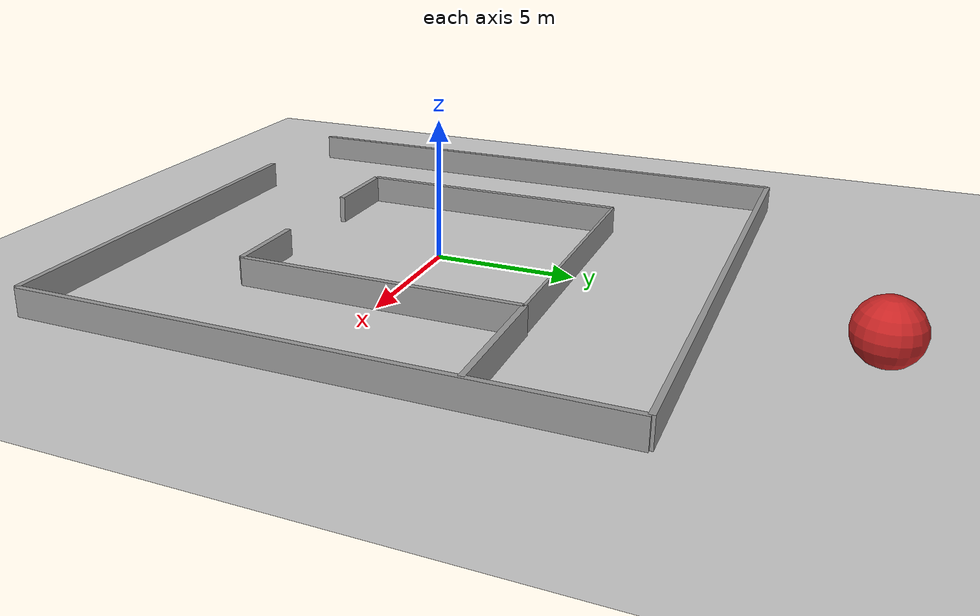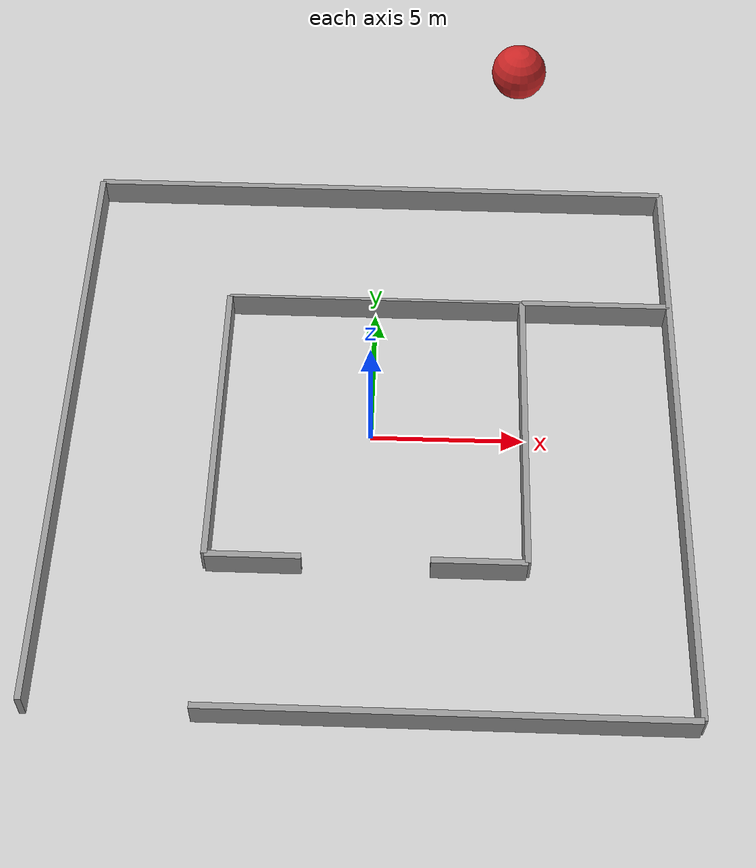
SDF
<?xml version="1.0" ?>
<!-- |    This document was autogenerated by xacro from /home/florian/workspace/catkin_ws/src/mapnplan/worlds/maze2.sdf.xacro | -->
<!-- |    EDITING THIS FILE BY HAND IS NOT RECOMMENDED                                 | -->
<sdf version="1.4">
  <world name="maze" xmlns:xacro="http://www.ros.org/wiki/xacro">
    <light name="sun" type="directional">
      <cast_shadows>1</cast_shadows>
      <pose>0 0 10 0 -0 0</pose>
      <diffuse>0.8 0.8 0.8 1</diffuse>
      <specular>0.2 0.2 0.2 1</specular>
      <attenuation>
        <range>1000</range>
        <constant>0.9</constant>
        <linear>0.01</linear>
        <quadratic>0.001</quadratic>
      </attenuation>
      <direction>-0.5 0.1 -0.9</direction>
    </light>
    <model name="ground_plane">
      <static>1</static>
      <link name="link">
        <collision name="collision">
          <geometry>
            <plane>
              <normal>0 0 1</normal>
              <size>100 100</size>
            </plane>
          </geometry>
          <surface>
            <friction>
              <ode>
                <mu>100</mu>
                <mu2>50</mu2>
              </ode>
            </friction>
            <bounce/>
            <contact>
              <ode/>
            </contact>
          </surface>
          <max_contacts>10</max_contacts>
        </collision>
        <visual name="visual">
          <cast_shadows>0</cast_shadows>
          <geometry>
            <plane>
              <normal>0 0 1</normal>
              <size>100 100</size>
            </plane>
          </geometry>
          <material>
            <script>
              <uri>file://media/materials/scripts/gazebo.material</uri>
              <name>Gazebo/Grey</name>
            </script>
          </material>
        </visual>
        <velocity_decay>
          <linear>0</linear>
          <angular>0</angular>
        </velocity_decay>
        <self_collide>0</self_collide>
        <kinematic>0</kinematic>
        <gravity>1</gravity>
      </link>
    </model>
    <physics type="ode">
      <max_step_size>0.001</max_step_size>
      <real_time_factor>1</real_time_factor>
      <real_time_update_rate>1000</real_time_update_rate>
      <gravity>0 0 -9.8</gravity>
    </physics>
    <scene>
      <ambient>0.4 0.4 0.4 1</ambient>
      <background>0.7 0.7 0.7 1</background>
      <shadows>1</shadows>
    </scene>
    <model name="unit_box_1">
      <pose>0 5 0.5 0 0 0</pose>
      <link name="link">
        <inertial>
          <mass>1</mass>
          <inertia>
            <ixx>1</ixx>
            <ixy>0</ixy>
            <ixz>0</ixz>
            <iyy>1</iyy>
            <iyz>0</iyz>
            <izz>1</izz>
          </inertia>
        </inertial>
        <collision name="collision">
          <geometry>
            <box>
              <size>10 0.1 1</size>
            </box>
          </geometry>
          <max_contacts>10</max_contacts>
          <surface>
            <bounce/>
            <friction>
              <ode/>
            </friction>
            <contact>
              <ode/>
            </contact>
          </surface>
        </collision>
        <visual name="visual">
          <geometry>
            <box>
              <size>10 0.1 1</size>
            </box>
          </geometry>
          <material>
            <script>
              <uri>file://media/materials/scripts/gazebo.material</uri>
              <name>Gazebo/Grey</name>
            </script>
          </material>
        </visual>
        <velocity_decay>
          <linear>0</linear>
          <angular>0</angular>
        </velocity_decay>
        <self_collide>0</self_collide>
        <kinematic>0</kinematic>
        <gravity>1</gravity>
      </link>
      <static>1</static>
    </model>
    <model name="unit_box_2">
      <pose>-5 0 0.5 0 0 0</pose>
      <link name="link">
        <inertial>
          <mass>1</mass>
          <inertia>
            <ixx>1</ixx>
            <ixy>0</ixy>
            <ixz>0</ixz>
            <iyy>1</iyy>
            <iyz>0</iyz>
            <izz>1</izz>
          </inertia>
        </inertial>
        <collision name="collision">
          <geometry>
            <box>
              <size>0.2 10 1</size>
            </box>
          </geometry>
          <max_contacts>10</max_contacts>
          <surface>
            <bounce/>
            <friction>
              <ode/>
            </friction>
            <contact>
              <ode/>
            </contact>
          </surface>
        </collision>
        <visual name="visual">
          <geometry>
            <box>
              <size>0.2 10 1</size>
            </box>
          </geometry>
          <material>
            <script>
              <uri>file://media/materials/scripts/gazebo.material</uri>
              <name>Gazebo/Grey</name>
            </script>
          </material>
        </visual>
        <velocity_decay>
          <linear>0</linear>
          <angular>0</angular>
        </velocity_decay>
        <self_collide>0</self_collide>
        <kinematic>0</kinematic>
        <gravity>1</gravity>
      </link>
      <static>1</static>
    </model>
    <model name="unit_box_3">
      <pose>5 0 0.5 0 0 0</pose>
      <link name="link">
        <inertial>
          <mass>1</mass>
          <inertia>
            <ixx>1</ixx>
            <ixy>0</ixy>
            <ixz>0</ixz>
            <iyy>1</iyy>
            <iyz>0</iyz>
            <izz>1</izz>
          </inertia>
        </inertial>
        <collision name="collision">
          <geometry>
            <box>
              <size>0.2 10 1</size>
            </box>
          </geometry>
          <max_contacts>10</max_contacts>
          <surface>
            <bounce/>
            <friction>
              <ode/>
            </friction>
            <contact>
              <ode/>
            </contact>
          </surface>
        </collision>
        <visual name="visual">
          <geometry>
            <box>
              <size>0.2 10 1</size>
            </box>
          </geometry>
          <material>
            <script>
              <uri>file://media/materials/scripts/gazebo.material</uri>
              <name>Gazebo/Grey</name>
            </script>
          </material>
        </visual>
        <velocity_decay>
          <linear>0</linear>
          <angular>0</angular>
        </velocity_decay>
        <self_collide>0</self_collide>
        <kinematic>0</kinematic>
        <gravity>1</gravity>
      </link>
      <static>1</static>
    </model>
    <model name="unit_box_4">
      <pose>-3.5 -5 0.5 0 0 0</pose>
      <link name="link">
        <inertial>
          <mass>1</mass>
          <inertia>
            <ixx>1</ixx>
            <ixy>0</ixy>
            <ixz>0</ixz>
            <iyy>1</iyy>
            <iyz>0</iyz>
            <izz>1</izz>
          </inertia>
        </inertial>
        <collision name="collision">
          <geometry>
            <box>
              <size>3 0.2 1</size>
            </box>
          </geometry>
          <max_contacts>10</max_contacts>
          <surface>
            <bounce/>
            <friction>
              <ode/>
            </friction>
            <contact>
              <ode/>
            </contact>
          </surface>
        </collision>
        <visual name="visual">
          <geometry>
            <box>
              <size>3 0.2 1</size>
            </box>
          </geometry>
          <material>
            <script>
              <uri>file://media/materials/scripts/gazebo.material</uri>
              <name>Gazebo/Grey</name>
            </script>
          </material>
        </visual>
        <velocity_decay>
          <linear>0</linear>
          <angular>0</angular>
        </velocity_decay>
        <self_collide>0</self_collide>
        <kinematic>0</kinematic>
        <gravity>1</gravity>
      </link>
      <static>1</static>
    </model>
    <model name="unit_box_5">
      <pose>3.5 -5 0.5 0 0 0</pose>
      <link name="link">
        <inertial>
          <mass>1</mass>
          <inertia>
            <ixx>1</ixx>
            <ixy>0</ixy>
            <ixz>0</ixz>
            <iyy>1</iyy>
            <iyz>0</iyz>
            <izz>1</izz>
          </inertia>
        </inertial>
        <collision name="collision">
          <geometry>
            <box>
              <size>3 0.2 1</size>
            </box>
          </geometry>
          <max_contacts>10</max_contacts>
          <surface>
            <bounce/>
            <friction>
              <ode/>
            </friction>
            <contact>
              <ode/>
            </contact>
          </surface>
        </collision>
        <visual name="visual">
          <geometry>
            <box>
              <size>3 0.2 1</size>
            </box>
          </geometry>
          <material>
            <script>
              <uri>file://media/materials/scripts/gazebo.material</uri>
              <name>Gazebo/Grey</name>
            </script>
          </material>
        </visual>
        <velocity_decay>
          <linear>0</linear>
          <angular>0</angular>
        </velocity_decay>
        <self_collide>0</self_collide>
        <kinematic>0</kinematic>
        <gravity>1</gravity>
      </link>
      <static>1</static>
    </model>
    <model name="unit_box_6">
      <pose>7.5 5 0.5 0 0 0</pose>
      <link name="link">
        <inertial>
          <mass>1</mass>
          <inertia>
            <ixx>1</ixx>
            <ixy>0</ixy>
            <ixz>0</ixz>
            <iyy>1</iyy>
            <iyz>0</iyz>
            <izz>1</izz>
          </inertia>
        </inertial>
        <collision name="collision">
          <geometry>
            <box>
              <size>5 0.2 1</size>
            </box>
          </geometry>
          <max_contacts>10</max_contacts>
          <surface>
            <bounce/>
            <friction>
              <ode/>
            </friction>
            <contact>
              <ode/>
            </contact>
          </surface>
        </collision>
        <visual name="visual">
          <geometry>
            <box>
              <size>5 0.2 1</size>
            </box>
          </geometry>
          <material>
            <script>
              <uri>file://media/materials/scripts/gazebo.material</uri>
              <name>Gazebo/Grey</name>
            </script>
          </material>
        </visual>
        <velocity_decay>
          <linear>0</linear>
          <angular>0</angular>
        </velocity_decay>
        <self_collide>0</self_collide>
        <kinematic>0</kinematic>
        <gravity>1</gravity>
      </link>
      <static>1</static>
    </model>
    <model name="unit_box_7">
      <pose>10 0 0.5 0 0 0</pose>
      <link name="link">
        <inertial>
          <mass>1</mass>
          <inertia>
            <ixx>1</ixx>
            <ixy>0</ixy>
            <ixz>0</ixz>
            <iyy>1</iyy>
            <iyz>0</iyz>
            <izz>1</izz>
          </inertia>
        </inertial>
        <collision name="collision">
          <geometry>
            <box>
              <size>0.2 20 1</size>
            </box>
          </geometry>
          <max_contacts>10</max_contacts>
          <surface>
            <bounce/>
            <friction>
              <ode/>
            </friction>
            <contact>
              <ode/>
            </contact>
          </surface>
        </collision>
        <visual name="visual">
          <geometry>
            <box>
              <size>0.2 20 1</size>
            </box>
          </geometry>
          <material>
            <script>
              <uri>file://media/materials/scripts/gazebo.material</uri>
              <name>Gazebo/Grey</name>
            </script>
          </material>
        </visual>
        <velocity_decay>
          <linear>0</linear>
          <angular>0</angular>
        </velocity_decay>
        <self_collide>0</self_collide>
        <kinematic>0</kinematic>
        <gravity>1</gravity>
      </link>
      <static>1</static>
    </model>
    <model name="unit_box_8">
      <pose>2.5 -10 0.5 0 0 0</pose>
      <link name="link">
        <inertial>
          <mass>1</mass>
          <inertia>
            <ixx>1</ixx>
            <ixy>0</ixy>
            <ixz>0</ixz>
            <iyy>1</iyy>
            <iyz>0</iyz>
            <izz>1</izz>
          </inertia>
        </inertial>
        <collision name="collision">
          <geometry>
            <box>
              <size>15 0.2 1</size>
            </box>
          </geometry>
          <max_contacts>10</max_contacts>
          <surface>
            <bounce/>
            <friction>
              <ode/>
            </friction>
            <contact>
              <ode/>
            </contact>
          </surface>
        </collision>
        <visual name="visual">
          <geometry>
            <box>
              <size>15 0.2 1</size>
            </box>
          </geometry>
          <material>
            <script>
              <uri>file://media/materials/scripts/gazebo.material</uri>
              <name>Gazebo/Grey</name>
            </script>
          </material>
        </visual>
        <velocity_decay>
          <linear>0</linear>
          <angular>0</angular>
        </velocity_decay>
        <self_collide>0</self_collide>
        <kinematic>0</kinematic>
        <gravity>1</gravity>
      </link>
      <static>1</static>
    </model>
    <model name="unit_box_9">
      <pose>-10 0 0.5 0 0 0</pose>
      <link name="link">
        <inertial>
          <mass>1</mass>
          <inertia>
            <ixx>1</ixx>
            <ixy>0</ixy>
            <ixz>0</ixz>
            <iyy>1</iyy>
            <iyz>0</iyz>
            <izz>1</izz>
          </inertia>
        </inertial>
        <collision name="collision">
          <geometry>
            <box>
              <size>0.2 20 1</size>
            </box>
          </geometry>
          <max_contacts>10</max_contacts>
          <surface>
            <bounce/>
            <friction>
              <ode/>
            </friction>
            <contact>
              <ode/>
            </contact>
          </surface>
        </collision>
        <visual name="visual">
          <geometry>
            <box>
              <size>0.2 20 1</size>
            </box>
          </geometry>
          <material>
            <script>
              <uri>file://media/materials/scripts/gazebo.material</uri>
              <name>Gazebo/Grey</name>
            </script>
          </material>
        </visual>
        <velocity_decay>
          <linear>0</linear>
          <angular>0</angular>
        </velocity_decay>
        <self_collide>0</self_collide>
        <kinematic>0</kinematic>
        <gravity>1</gravity>
      </link>
      <static>1</static>
    </model>
    <model name="unit_box_10">
      <pose>0 10 0.5 0 0 0</pose>
      <link name="link">
        <inertial>
          <mass>1</mass>
          <inertia>
            <ixx>1</ixx>
            <ixy>0</ixy>
            <ixz>0</ixz>
            <iyy>1</iyy>
            <iyz>0</iyz>
            <izz>1</izz>
          </inertia>
        </inertial>
        <collision name="collision">
          <geometry>
            <box>
              <size>20 0.2 1</size>
            </box>
          </geometry>
          <max_contacts>10</max_contacts>
          <surface>
            <bounce/>
            <friction>
              <ode/>
            </friction>
            <contact>
              <ode/>
            </contact>
          </surface>
        </collision>
        <visual name="visual">
          <geometry>
            <box>
              <size>20 0.2 1</size>
            </box>
          </geometry>
          <material>
            <script>
              <uri>file://media/materials/scripts/gazebo.material</uri>
              <name>Gazebo/Grey</name>
            </script>
          </material>
        </visual>
        <velocity_decay>
          <linear>0</linear>
          <angular>0</angular>
        </velocity_decay>
        <self_collide>0</self_collide>
        <kinematic>0</kinematic>
        <gravity>1</gravity>
      </link>
      <static>1</static>
    </model>
    <model name="goal">
      <pose>5 15 2.0 0 0 0</pose>
      <link name="link">
        <inertial>
          <mass>1</mass>
          <inertia>
            <ixx>1</ixx>
            <ixy>0</ixy>
            <ixz>0</ixz>
            <iyy>1</iyy>
            <iyz>0</iyz>
            <izz>1</izz>
          </inertia>
        </inertial>
        <collision name="collision">
          <geometry>
            <sphere>
              <radius>1</radius>
            </sphere>
          </geometry>
          <max_contacts>10</max_contacts>
          <surface>
            <bounce/>
            <friction>
              <ode/>
            </friction>
            <contact>
              <ode/>
            </contact>
          </surface>
        </collision>
        <visual name="visual">
          <geometry>
            <sphere>
              <radius>1</radius>
            </sphere>
          </geometry>
          <material>
            <script>
              <uri>file://media/materials/scripts/gazebo.material</uri>
              <name>Gazebo/Red</name>
            </script>
          </material>
        </visual>
        <velocity_decay>
          <linear>0</linear>
          <angular>0</angular>
        </velocity_decay>
        <self_collide>0</self_collide>
        <kinematic>0</kinematic>
        <gravity>1</gravity>
      </link>
      <static>1</static>
    </model>
    <gui fullscreen="0">
      <camera name="user_camera">
        <pose>5 -5 2 0 0.275643 2.35619</pose>
        <view_controller>orbit</view_controller>
      </camera>
    </gui>
  </world>
</sdf>
